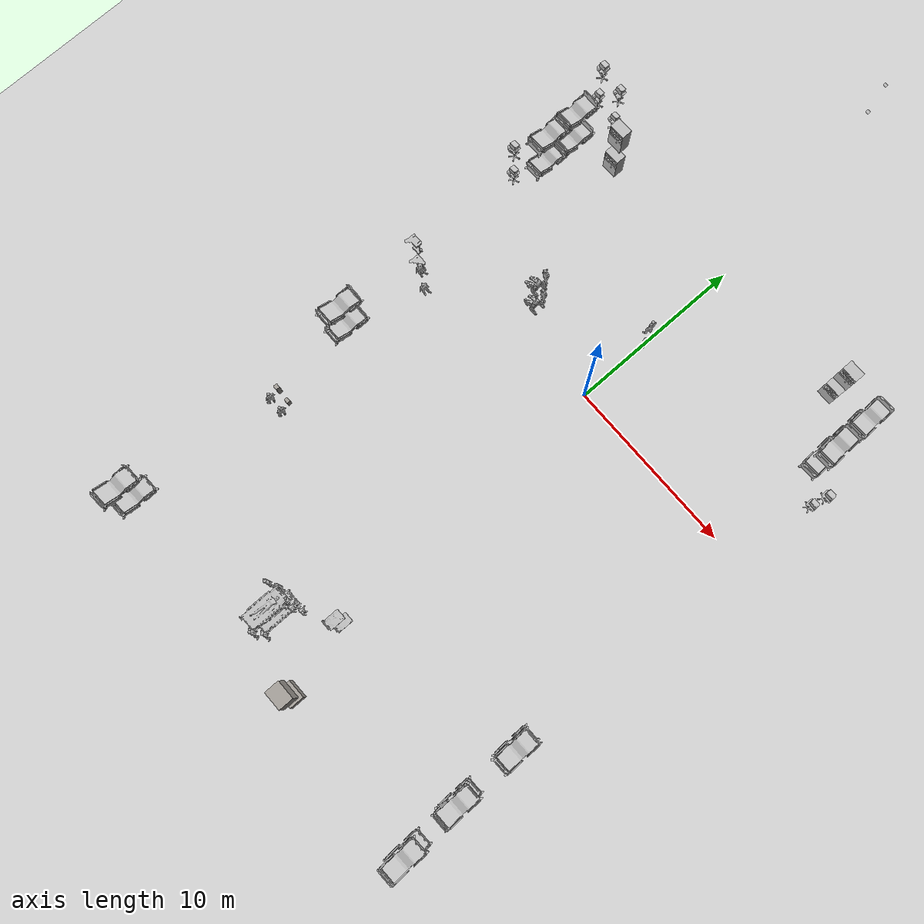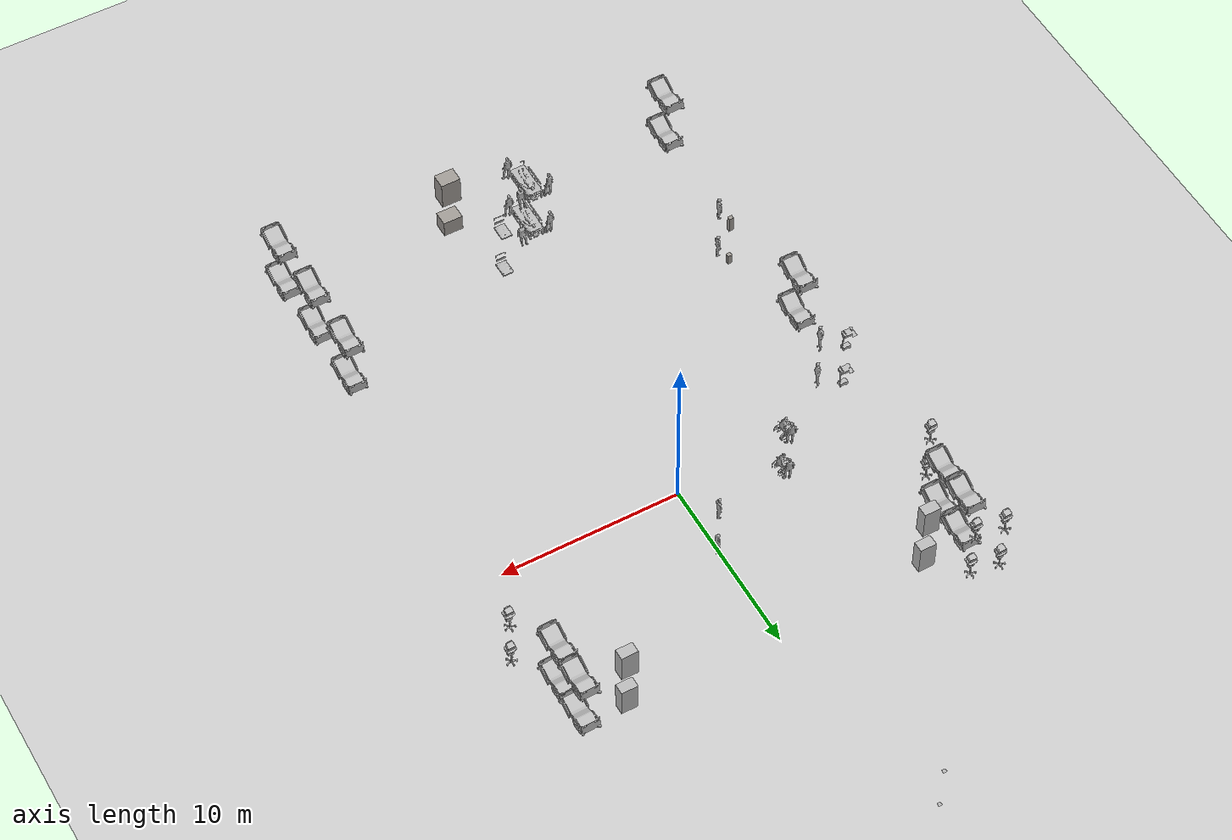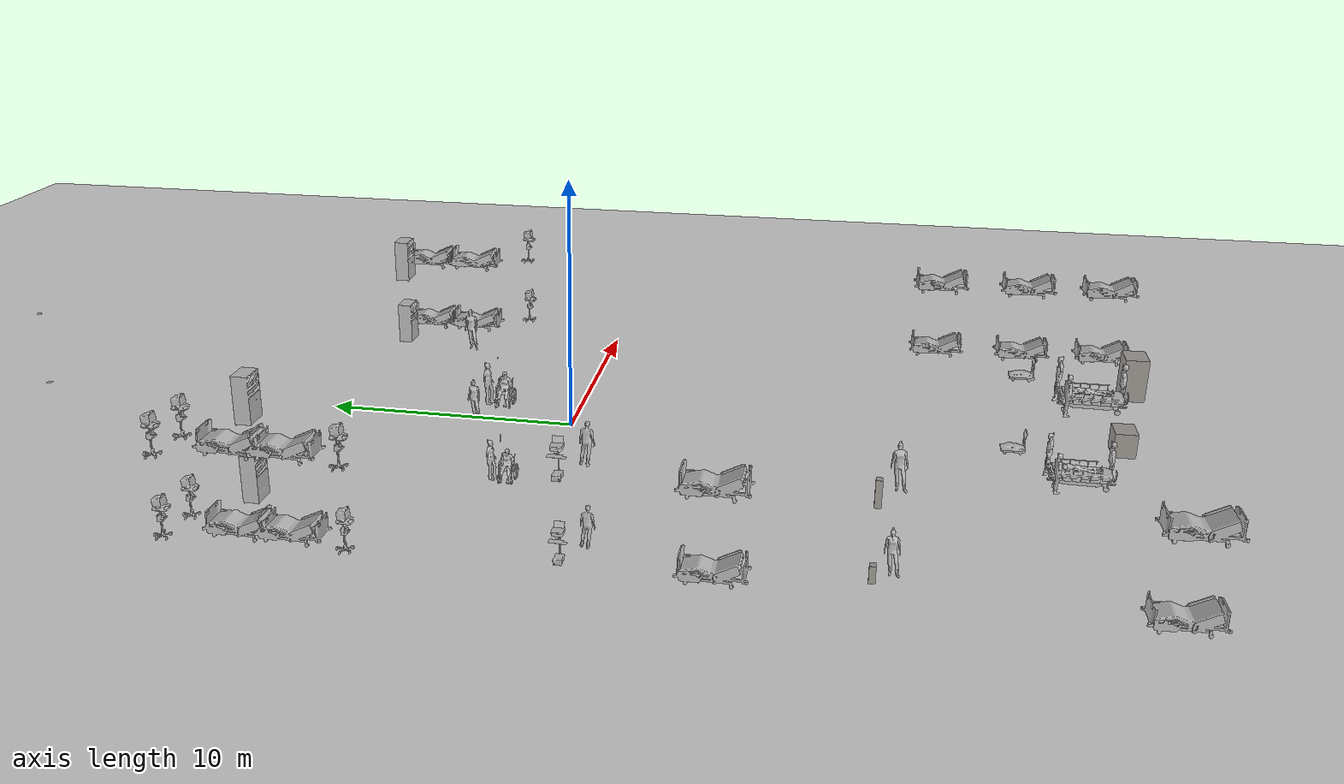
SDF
<sdf version="1.6">
 <world name="world">
  <plugin name="gazebo_ros_state" filename="libgazebo_ros_state.so">
   <ros>
    <namespace>/hospital</namespace>
    <argument>model_states:=model_states_hospital</argument>
    <argument>link_states:=link_states_hospital</argument>
   </ros>
   <update_rate>1.0</update_rate>
  </plugin>
  <gravity>0 0 -9.8</gravity>
  <physics default="0" name="default_physics" type="ode">
   <max_step_size>0.001</max_step_size>
   <real_time_factor>1</real_time_factor>
   <real_time_update_rate>1000</real_time_update_rate>
  </physics>
  <scene><ambient>0.6 0.6 0.6 1</ambient><background>0.4 0.4 0.4 1</background><shadows>false</shadows></scene>
  <include><uri>model://sun</uri></include>
  <include><uri>model://ground_plane</uri><pose>0 0 -0.1 0 -0 0</pose></include>
  <model name="aruco_marker_0">
   <include>
    <uri>model://aruco_marker_0</uri>
    <static>true</static>
    <pose>-1.51 21.96 0.8  1.571 -1.571 0</pose>
   </include>
  </model>
  <model name="CGMClassic_1">
   <include>
    <uri>model://CGMClassic</uri>
    <static>true</static>
    <pose>11.1777 -18.4129 0 0 0 -3.13719</pose>
   </include>
  </model>
  <model name="CGMClassic_2">
   <include>
    <uri>model://CGMClassic</uri>
    <static>true</static>
    <pose>11.1179 -14.6493 0 0 0 -3.13599</pose>
   </include>
  </model>
  <model name="Scrubs_1">
   <include><uri>model://Scrubs</uri><static>true</static><pose>-9.61916 -12.5112 0 0 0 -3.12353</pose></include>
  </model>
  <model name="Scrubs_2">
   <include><uri>model://Scrubs</uri><static>true</static><pose>0.054597 4.05849 0 0 -0 3.12413</pose></include>
  </model>
  <model name="PatientWheelChair_1">
   <include>
    <uri>model://PatientWheelChair</uri>
    <static>true</static>
    <pose>-5.46091 1.23577 0 0 0 -1.54828</pose>
   </include>
  </model>
  <model name="Scrubs_3">
   <include><uri>model://Scrubs</uri><static>true</static><pose>-5.38513 1.82526 0 0 0 -1.63757</pose></include>
  </model>
  <model name="CGMClassic_3">
   <include>
    <uri>model://CGMClassic</uri>
    <static>true</static>
    <pose>-11.2304 -21.1134 0 0 0 -3.11834</pose>
   </include>
  </model>
  <model name="CGMClassic_4">
   <include>
    <uri>model://CGMClassic</uri>
    <static>true</static>
    <pose>-11.0878 -7.00992 0 0 -0 3.1351</pose>
   </include>
  </model>
  <model name="CGMClassic_5">
   <include>
    <uri>model://CGMClassic</uri>
    <static>true</static>
    <pose>-11.0106 8.9505 -0.008203 -0.035019 -0.000392 3.13388</pose>
   </include>
  </model>
  <model name="CGMClassic_6">
   <include>
    <uri>model://CGMClassic</uri>
    <static>true</static>
    <pose>-11.025 7.10335 0 -0.035021 1.8e-05 -3.13762</pose>
   </include>
  </model>
  <model name="TrolleyBedPatient_1">
   <include>
    <uri>model://TrolleyBedPatient</uri>
    <static>true</static>
    <pose>-1.83202 -19.2612 0 0 -0 0</pose>
   </include>
  </model>
  <model name="Scrubs_4">
   <include><uri>model://Scrubs</uri><static>true</static><pose>-0.93616 -18.2252 0 0 -0 1.62572</pose></include>
  </model>
  <model name="Scrubs_5">
   <include>
    <uri>model://Scrubs</uri>
    <static>true</static>
    <pose>-2.66657 -18.3733 0 -0.002221 -0.006608 -1.24025</pose>
   </include>
  </model>
  <model name="CGMClassic_7">
   <include>
    <uri>model://CGMClassic</uri>
    <static>true</static>
    <pose>10.6166 9.06291 -0.008203 -0.03501 0.000885 -3.11285</pose>
   </include>
  </model>
  <model name="CGMClassic_8">
   <include>
    <uri>model://CGMClassic</uri>
    <static>true</static>
    <pose>10.6006 6.90956 -0.008203 -0.035003 0.001133 -3.10576</pose>
   </include>
  </model>
  <model name="ParkingTrolleyMin_1">
   <include>
    <uri>model://ParkingTrolleyMin</uri>
    <static>true</static>
    <pose>0.715846 -17.1496 -0.000121 -1e-06 -0 0</pose>
   </include>
  </model>
  <model name="Scrubs_6">
   <include><uri>model://Scrubs</uri><static>true</static><pose>-1.29468 -20.4093 0 0 0 -1.51066</pose></include>
  </model>
  <model name="CGMClassic_9">
   <include>
    <uri>model://CGMClassic</uri>
    <static>true</static>
    <pose>11.3613 -21.8867 0 0 0 -3.12292</pose>
   </include>
  </model>
  <model name="XRayMachine_1">
   <include><uri>model://XRayMachine</uri><static>true</static><pose>1.79424 -21.3329 0 0 -0 0</pose></include>
  </model>
  <model name="BloodPressureMonitor_1">
   <include>
    <uri>model://BloodPressureMonitor</uri>
    <static>true</static>
    <pose>-9.96258 -11.9361 0 0 -0 0</pose>
   </include>
  </model>
  <model name="BMWCart_1">
   <include><uri>model://BMWCart</uri><static>true</static><pose>-10.931 -1.9483 0 0 -0 0</pose></include>
  </model>
  <model name="Scrubs_7">
   <include><uri>model://Scrubs</uri><static>true</static><pose>-9.75875 -2.67552 0 0 -0 0</pose></include>
  </model>
  <model name="BPCart_1">
   <include>
    <uri>model://BPCart</uri>
    <static>true</static>
    <pose>-10.1788 11.173 0.003446 1e-06 -0 0.003096</pose>
   </include>
  </model>
  <model name="BPCart_2">
   <include><uri>model://BPCart</uri><static>true</static><pose>12.0072 4.64765 0 0 -0 0</pose></include>
  </model>
  <model name="BPCart_3">
   <include><uri>model://BPCart</uri><static>true</static><pose>-11.7236 11.4294 0 0 -0 0</pose></include>
  </model>
  <model name="BPCart_4">
   <include>
    <uri>model://BPCart</uri>
    <static>true</static>
    <pose>-11.4703 5.05999 0.003446 1e-06 -0 0.003096</pose>
   </include>
  </model>
  <model name="VendingMachine_1">
   <include>
    <uri>model://VendingMachine</uri>
    <static>true</static>
    <pose>-8.45694 9.63064 0 0 -0 0</pose>
   </include>
  </model>
  <model name="VendingMachine_2">
   <include>
    <uri>model://VendingMachine</uri>
    <static>true</static>
    <pose>8.35378 9.64852 -3e-06 -6e-06 0 0</pose>
   </include>
  </model>
  <model name="floor_1_aruco_marker_0">
   <include>
    <uri>model://aruco_marker_0</uri>
    <static>true</static>
    <pose>-1.51 21.96 3.8  1.571 -1.571 0</pose>
   </include>
  </model>
  <model name="floor_1_CGMClassic_1">
   <include>
    <uri>model://CGMClassic</uri>
    <static>true</static>
    <pose>11.1777 -18.4129 3.0 0 0 -3.13719</pose>
   </include>
  </model>
  <model name="floor_1_CGMClassic_2">
   <include>
    <uri>model://CGMClassic</uri>
    <static>true</static>
    <pose>11.1179 -14.6493 3.0 0 0 -3.13599</pose>
   </include>
  </model>
  <model name="floor_1_Scrubs_1">
   <include>
    <uri>model://Scrubs</uri>
    <static>true</static>
    <pose>-9.61916 -12.5112 3.0 0 0 -3.12353</pose>
   </include>
  </model>
  <model name="floor_1_Scrubs_2">
   <include>
    <uri>model://Scrubs</uri>
    <static>true</static>
    <pose>0.054597 4.05849 3.0 0 -0 3.12413</pose>
   </include>
  </model>
  <model name="floor_1_PatientWheelChair_1">
   <include>
    <uri>model://PatientWheelChair</uri>
    <static>true</static>
    <pose>-5.46091 1.23577 3.0 0 0 -1.54828</pose>
   </include>
  </model>
  <model name="floor_1_Scrubs_3">
   <include>
    <uri>model://Scrubs</uri>
    <static>true</static>
    <pose>-5.38513 1.82526 3.0 0 0 -1.63757</pose>
   </include>
  </model>
  <model name="floor_1_CGMClassic_3">
   <include>
    <uri>model://CGMClassic</uri>
    <static>true</static>
    <pose>-11.2304 -21.1134 3.0 0 0 -3.11834</pose>
   </include>
  </model>
  <model name="floor_1_CGMClassic_4">
   <include>
    <uri>model://CGMClassic</uri>
    <static>true</static>
    <pose>-11.0878 -7.00992 3.0 0 -0 3.1351</pose>
   </include>
  </model>
  <model name="floor_1_CGMClassic_5">
   <include>
    <uri>model://CGMClassic</uri>
    <static>true</static>
    <pose>-11.0106 8.9505 2.991797 -0.035019 -0.000392 3.13388</pose>
   </include>
  </model>
  <model name="floor_1_CGMClassic_6">
   <include>
    <uri>model://CGMClassic</uri>
    <static>true</static>
    <pose>-11.025 7.10335 3.0 -0.035021 1.8e-05 -3.13762</pose>
   </include>
  </model>
  <model name="floor_1_TrolleyBedPatient_1">
   <include>
    <uri>model://TrolleyBedPatient</uri>
    <static>true</static>
    <pose>-1.83202 -19.2612 3.0 0 -0 0</pose>
   </include>
  </model>
  <model name="floor_1_Scrubs_4">
   <include>
    <uri>model://Scrubs</uri>
    <static>true</static>
    <pose>-0.93616 -18.2252 3.0 0 -0 1.62572</pose>
   </include>
  </model>
  <model name="floor_1_Scrubs_5">
   <include>
    <uri>model://Scrubs</uri>
    <static>true</static>
    <pose>-2.66657 -18.3733 3.0 -0.002221 -0.006608 -1.24025</pose>
   </include>
  </model>
  <model name="floor_1_CGMClassic_7">
   <include>
    <uri>model://CGMClassic</uri>
    <static>true</static>
    <pose>10.6166 9.06291 2.991797 -0.03501 0.000885 -3.11285</pose>
   </include>
  </model>
  <model name="floor_1_CGMClassic_8">
   <include>
    <uri>model://CGMClassic</uri>
    <static>true</static>
    <pose>10.6006 6.90956 2.991797 -0.035003 0.001133 -3.10576</pose>
   </include>
  </model>
  <model name="floor_1_ParkingTrolleyMin_1">
   <include>
    <uri>model://ParkingTrolleyMin</uri>
    <static>true</static>
    <pose>0.715846 -17.1496 2.999879 -1e-06 -0 0</pose>
   </include>
  </model>
  <model name="floor_1_Scrubs_6">
   <include>
    <uri>model://Scrubs</uri>
    <static>true</static>
    <pose>-1.29468 -20.4093 3.0 0 0 -1.51066</pose>
   </include>
  </model>
  <model name="floor_1_CGMClassic_9">
   <include>
    <uri>model://CGMClassic</uri>
    <static>true</static>
    <pose>11.3613 -21.8867 3.0 0 0 -3.12292</pose>
   </include>
  </model>
  <model name="floor_1_XRayMachine_1">
   <include><uri>model://XRayMachine</uri><static>true</static><pose>1.79424 -21.3329 3.0 0 -0 0</pose></include>
  </model>
  <model name="floor_1_BloodPressureMonitor_1">
   <include>
    <uri>model://BloodPressureMonitor</uri>
    <static>true</static>
    <pose>-9.96258 -11.9361 3.0 0 -0 0</pose>
   </include>
  </model>
  <model name="floor_1_BMWCart_1">
   <include><uri>model://BMWCart</uri><static>true</static><pose>-10.931 -1.9483 3.0 0 -0 0</pose></include>
  </model>
  <model name="floor_1_Scrubs_7">
   <include><uri>model://Scrubs</uri><static>true</static><pose>-9.75875 -2.67552 3.0 0 -0 0</pose></include>
  </model>
  <model name="floor_1_BPCart_1">
   <include>
    <uri>model://BPCart</uri>
    <static>true</static>
    <pose>-10.1788 11.173 3.003446 1e-06 -0 0.003096</pose>
   </include>
  </model>
  <model name="floor_1_BPCart_2">
   <include><uri>model://BPCart</uri><static>true</static><pose>12.0072 4.64765 3.0 0 -0 0</pose></include>
  </model>
  <model name="floor_1_BPCart_3">
   <include><uri>model://BPCart</uri><static>true</static><pose>-11.7236 11.4294 3.0 0 -0 0</pose></include>
  </model>
  <model name="floor_1_BPCart_4">
   <include>
    <uri>model://BPCart</uri>
    <static>true</static>
    <pose>-11.4703 5.05999 3.003446 1e-06 -0 0.003096</pose>
   </include>
  </model>
  <model name="floor_1_VendingMachine_1">
   <include>
    <uri>model://VendingMachine</uri>
    <static>true</static>
    <pose>-8.45694 9.63064 3.0 0 -0 0</pose>
   </include>
  </model>
  <model name="floor_1_VendingMachine_2">
   <include>
    <uri>model://VendingMachine</uri>
    <static>true</static>
    <pose>8.35378 9.64852 2.999997 -6e-06 0 0</pose>
   </include>
  </model>
 </world>
</sdf>

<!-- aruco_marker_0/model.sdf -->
<sdf version='1.6'>
  <model name='aruco_marker_0'>
    <link name='link_0'>
      <pose frame=''>0 0 0 0 -0 0</pose>
      <inertial>
        <mass>1</mass>
        <inertia>
          <ixx>0</ixx>
          <ixy>0</ixy>
          <ixz>0</ixz>
          <iyy>0</iyy>
          <iyz>0</iyz>
          <izz>0</izz>
        </inertia>
      </inertial>
      <visual name='visual'>
        <pose frame=''>0 0 0 0 -0 0</pose>
        <geometry>
          <mesh>
            <uri>file://isr-testbed/aruco_marker_0/aruco_marker_0.dae</uri>
            <scale>0.1 0.1 0.1</scale>
          </mesh>
        </geometry>
        <material>
          <lighting>1</lighting>
          <script>
            <uri>file://media/materials/scripts/gazebo.material</uri>
            <name>Gazebo/DepthMapVS</name>
          </script>
          <ambient>0.3 0.3 0.3 1</ambient>
          <diffuse>0.7 0.7 0.7 1</diffuse>
          <specular>0.01 0.01 0.01 1</specular>
          <emissive>0 0 0 1</emissive>
        </material>
        <transparency>0</transparency>
        <cast_shadows>1</cast_shadows>
      </visual>
      <collision name='collision'>
        <laser_retro>0</laser_retro>
        <max_contacts>10</max_contacts>
        <pose frame=''>0 0 0 0 -0 0</pose>
        <geometry>
          <mesh>
            <uri>file://isr-testbed/aruco_marker_0/aruco_marker_0.dae</uri>
            <scale>0.1 0.1 0.1</scale>
          </mesh>
        </geometry>
        <surface>
          <friction>
            <ode>
              <mu>1</mu>
              <mu2>1</mu2>
              <fdir1>0 0 0</fdir1>
              <slip1>0</slip1>
              <slip2>0</slip2>
            </ode>
            <torsional>
              <coefficient>1</coefficient>
              <patch_radius>0</patch_radius>
              <surface_radius>0</surface_radius>
              <use_patch_radius>1</use_patch_radius>
              <ode>
                <slip>0</slip>
              </ode>
            </torsional>
          </friction>
          <bounce>
            <restitution_coefficient>0</restitution_coefficient>
            <threshold>1e+06</threshold>
          </bounce>
          <contact>
            <collide_without_contact>0</collide_without_contact>
            <collide_without_contact_bitmask>1</collide_without_contact_bitmask>
            <collide_bitmask>1</collide_bitmask>
            <ode>
              <soft_cfm>0</soft_cfm>
              <soft_erp>0.2</soft_erp>
              <kp>1e+13</kp>
              <kd>1</kd>
              <max_vel>0.01</max_vel>
              <min_depth>0</min_depth>
            </ode>
            <bullet>
              <split_impulse>1</split_impulse>
              <split_impulse_penetration_threshold>-0.01</split_impulse_penetration_threshold>
              <soft_cfm>0</soft_cfm>
              <soft_erp>0.2</soft_erp>
              <kp>1e+13</kp>
              <kd>1</kd>
            </bullet>
          </contact>
        </surface>
      </collision>
    </link>
    <static>1</static>
    <allow_auto_disable>1</allow_auto_disable>
  </model>
</sdf>

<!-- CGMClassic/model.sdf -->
<sdf version="1.6">
  <model name="CGMClassic">
   <static>true</static>
    <link name="body">
      <pose>0 0 0 0 0 0</pose>

      <visual name="visual">
        <geometry>
          <mesh>
            <uri>model://CGMClassic/meshes/CGMClassic.obj</uri>
            <scale>0.01 0.01 0.01</scale>
          </mesh>
        </geometry>
      </visual>

      <collision name="collision">
        <geometry>
          <mesh>
            <uri>model://CGMClassic/meshes/CGMClassic.obj</uri>
            <scale>0.01 0.01 0.01</scale>
          </mesh>
        </geometry>
      </collision>

    </link>
  </model>
</sdf>

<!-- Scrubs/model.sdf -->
<sdf version="1.6">
  <model name='Scrubs'>
   <static>true</static>
    <link name="body">
      <pose>0 0 0 0 0 0</pose>

      <visual name="visual">
        <geometry>
          <mesh>
            <uri>model://Scrubs/meshes/scrubs.obj</uri>
          </mesh>
        </geometry>
      </visual>

      <collision name="collision">
        <geometry>
          <mesh>
            <uri>model://Scrubs/meshes/Scrubs_Col.obj</uri>
          </mesh>
        </geometry>
      </collision>

    </link>
  </model>
</sdf>

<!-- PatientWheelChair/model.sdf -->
<sdf version="1.6">
  <model name="PatientWheelChair">
   <static>true</static>
    <link name="body">
      <pose>0 0 0 0 0 0</pose>

      <visual name="visual">
        <geometry>
          <mesh>
            <uri>model://PatientWheelChair/meshes/PatientWheelChair.obj</uri>
          </mesh>
        </geometry>
      </visual>

      <collision name="collision">
        <geometry>
          <mesh>
            <uri>model://PatientWheelChair/meshes/PatientWheelChair_Col.obj</uri>
          </mesh>
        </geometry>
      </collision>

    </link>
  </model>
</sdf>

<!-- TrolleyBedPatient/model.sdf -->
<sdf version="1.6">
  <model name="TrolleyBedPatient">
   <static>true</static>
    <link name="body">
      <pose>0 0 0 0 0 0</pose>

      <visual name="visual">
        <geometry>
          <mesh>
            <uri>model://TrolleyBedPatient/meshes/TrolleyBedPatient.obj</uri>
          </mesh>
        </geometry>
      </visual>

      <collision name="collision">
        <geometry>
          <mesh>
            <uri>model://TrolleyBedPatient/meshes/TrolleyBedPatient.obj</uri>
          </mesh>
        </geometry>
      </collision>

    </link>
  </model>
</sdf>

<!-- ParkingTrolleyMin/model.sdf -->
<sdf version="1.6">
  <model name="ParkingTrolleyMin">
    <link name="body">
      <pose>0 0 0 0 0 0</pose>

        <visual name="visual">
          <pose>0 0 0 0 0 0</pose>
          <geometry>
            <mesh><uri>model://ParkingTrolleyMin/meshes/trolleymin.obj</uri></mesh>
          </geometry>
        </visual>

        <collision name="collision">
          <pose>0 0 0 0 0 0</pose>
          <geometry>
            <mesh><uri>model://ParkingTrolleyMin/meshes/trolleymin.obj</uri></mesh>
          </geometry>
        </collision>

    </link>
  </model>
</sdf>

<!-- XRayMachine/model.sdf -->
<sdf version="1.6">
  <model name="XRayMachine">
    <static>true</static>
    <link name="link">
      <collision name="col">
        <geometry>
          <box>
            <size>1.1 0.85 1.65</size>
          </box>
        </geometry>
      </collision>
      <visual name="vis">
        <geometry>
          <box>
            <size>1.1 0.85 1.65</size>
          </box>
        </geometry>
        <material>
          <ambient>0.62 0.6 0.58 1</ambient>
          <diffuse>0.62 0.6 0.58 1</diffuse>
        </material>
      </visual>
    </link>
  </model>
</sdf>

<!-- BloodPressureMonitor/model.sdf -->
<sdf version="1.6">
  <model name="BloodPressureMonitor">
    <static>true</static>
    <link name="link">
      <collision name="col">
        <geometry>
          <box>
            <size>0.25 0.22 0.95</size>
          </box>
        </geometry>
      </collision>
      <visual name="vis">
        <geometry>
          <box>
            <size>0.25 0.22 0.95</size>
          </box>
        </geometry>
        <material>
          <ambient>0.62 0.6 0.58 1</ambient>
          <diffuse>0.62 0.6 0.58 1</diffuse>
        </material>
      </visual>
    </link>
  </model>
</sdf>

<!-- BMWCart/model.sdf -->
<sdf version="1.6">
  <model name='BMWCart'>
    <link name="body">
      <pose>0 0 0 0 0 0</pose>

      <visual name="visual">
        <geometry>
          <mesh>
            <uri>model://BMWCart/meshes/Cart_BMW.obj</uri>
          </mesh>
        </geometry>
      </visual>

      <collision name="collision">
        <geometry>
          <mesh>
            <uri>model://BMWCart/meshes/Cart_BMW_Col.obj</uri>
          </mesh>
        </geometry>
      </collision>

    </link>
  </model>
</sdf>

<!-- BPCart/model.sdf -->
<sdf version="1.6">
  <model name='BPCart'>
    <link name="body">
      <pose>0 0 0 0 0 0</pose>

      <visual name="visual">
        <geometry>
          <mesh>
            <uri>model://BPCart/meshes/Cart_BP.obj</uri>
          </mesh>
        </geometry>
      </visual>

      <collision name="collision">
        <geometry>
          <mesh>
            <uri>model://BPCart/meshes/Cart_BP_Col.obj</uri>
          </mesh>
        </geometry>
      </collision>

    </link>
  </model>
</sdf>

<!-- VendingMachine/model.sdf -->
<sdf version="1.6">
  <model name="VendingMachine">
    <link name="body">
      <pose>0 0 0 0 0 0</pose>

      <visual name="visual">
        <geometry>
          <mesh>
            <uri>model://VendingMachine/meshes/vend.obj</uri>
          </mesh>
        </geometry>
      </visual>

      <collision name="collision">
        <geometry>
          <mesh>
            <uri>model://VendingMachine/meshes/vend.obj</uri>
          </mesh>
        </geometry>
      </collision>

    </link>
  </model>
</sdf>
